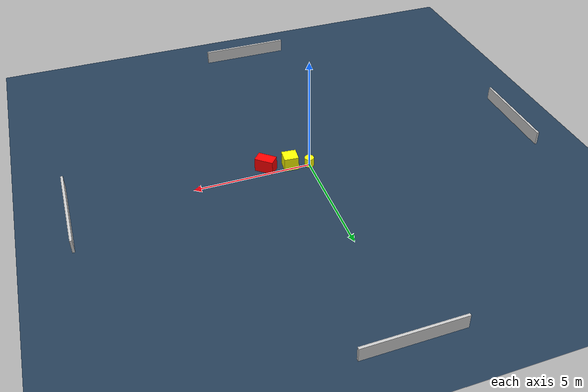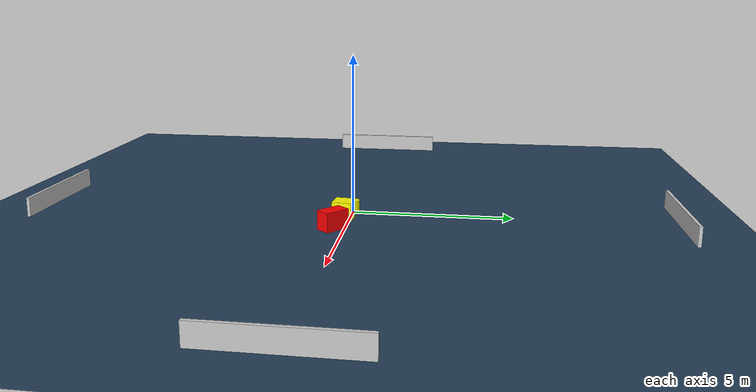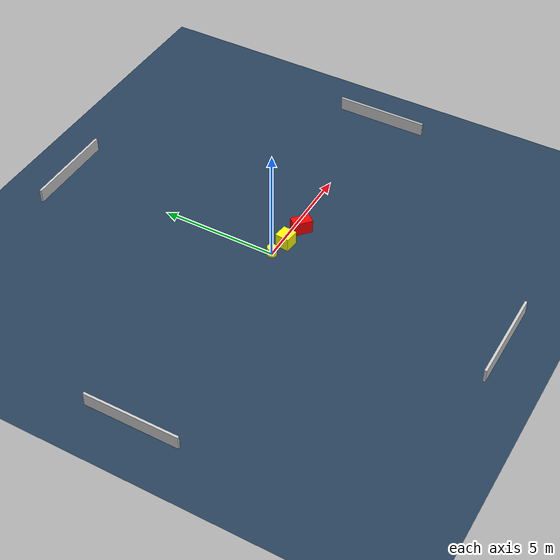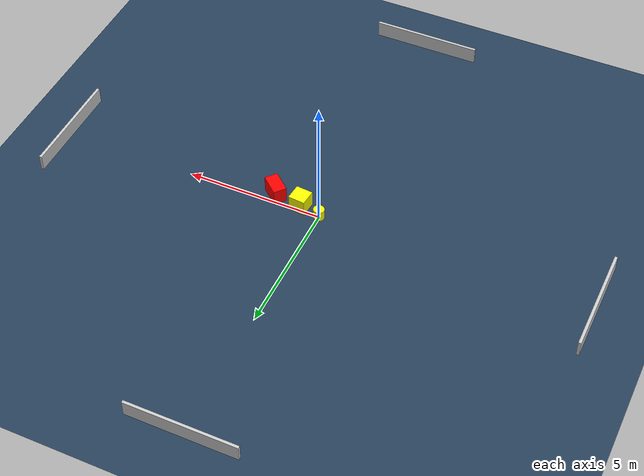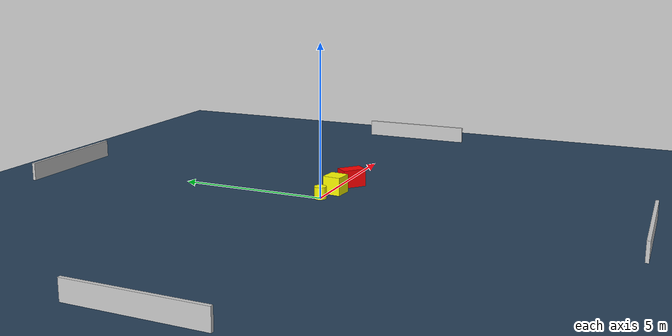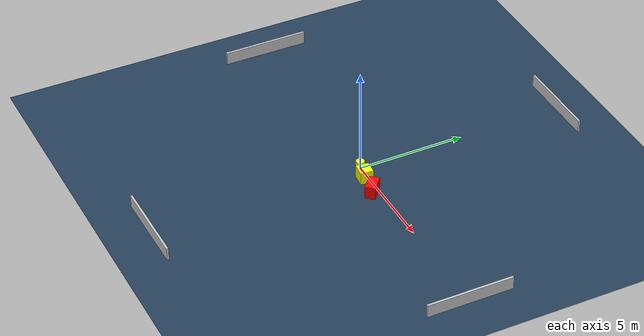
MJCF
<?xml version="1.0" ?>
<mujoco model="generated_environment">
  <option timestep="0.01" integrator="RK4" cone="elliptic"/>
  <default>
    <geom density="1"/>
  </default>
  <asset>
    <texture builtin="gradient" height="3072" name="skybox" rgb1="0.3 0.5 0.7" rgb2="0 0 0" type="skybox" width="512"/>
    <texture builtin="checker" height="300" name="groundplane" rgb1="0.2 0.3 0.4" rgb2="0.1 0.2 0.3" type="2d" width="300"/>
    <material name="groundplane" reflectance="0.2" texrepeat="5 5" texture="groundplane"/>
  </asset>
  <worldbody>
    <light dir="0 0 -1" directional="true" pos="0 0 1.5"/>
    <geom condim="3" friction="0.5 0.005 0.001" material="groundplane" name="floor" pos="0 0 0" size="0 0 0.05" type="plane"/>
    <body name="walls">
      <geom name="wall_1" condim="4" pos="-10.0 0.0 0.3" rgba="0.800000011920929 0.800000011920929 0.800000011920929 1.0" size="0.05 2.0 0.3" type="box"/>
      <geom name="wall_2" condim="4" pos="10.0 0.0 0.3" rgba="0.800000011920929 0.800000011920929 0.800000011920929 1.0" size="0.05 2.0 0.3" type="box"/>
      <geom name="wall_3" condim="4" pos="0.0 -10.0 0.3" rgba="0.800000011920929 0.800000011920929 0.800000011920929 1.0" size="2.0 0.05 0.3" type="box"/>
      <geom name="wall_4" condim="4" pos="0.0 10.0 0.3" rgba="0.800000011920929 0.800000011920929 0.800000011920929 1.0" size="2.0 0.05 0.3" type="box"/>
    </body>
    <body name="robot">
      <joint name="joint_x" type="slide" pos="0 0 0" axis="1 0 0"/>
      <joint name="joint_y" type="slide" pos="0 0 0" axis="0 1 0"/>
      <geom name="robot" type="cylinder" pos="0.0 0.0 0.2" size="0.2 0.2 0.0" mass="5.0" friction="1.0 0.005 0.0001" condim="4" rgba="1.0 1.0 0.0 1.0"/>
    </body>
    <body name="obstacle_1_movable">
      <geom name="obstacle_1_movable" condim="4" pos="0.7960986607491333 -0.19334123787917856 0.3" euler="0 0 354.82417146607065" friction="0.0 0.005 0.001" rgba="1.0 1.0 0.0 1.0" size="0.30817468085745503 0.2992925753660155 0.3" type="box" mass="0.1"/>
      <joint type="free"/>
    </body>
    <body name="obstacle_2_static">
      <geom name="obstacle_2_static" condim="4" pos="1.8290184680533739 -0.3434801404005297 0.3" euler="0 0 139.03770106133845" friction="0.0 0.005 0.001" rgba="1.0 0.0 0.0 1.0" size="0.40684001560282246 0.24096534043712214 0.3" type="box"/>
    </body>
  </worldbody>
  <actuator>
    <motor name="actuator_x" joint="joint_x" gear="1" ctrlrange="-1 1"/>
    <motor name="actuator_y" joint="joint_y" gear="1" ctrlrange="-1 1"/>
  </actuator>
</mujoco>
